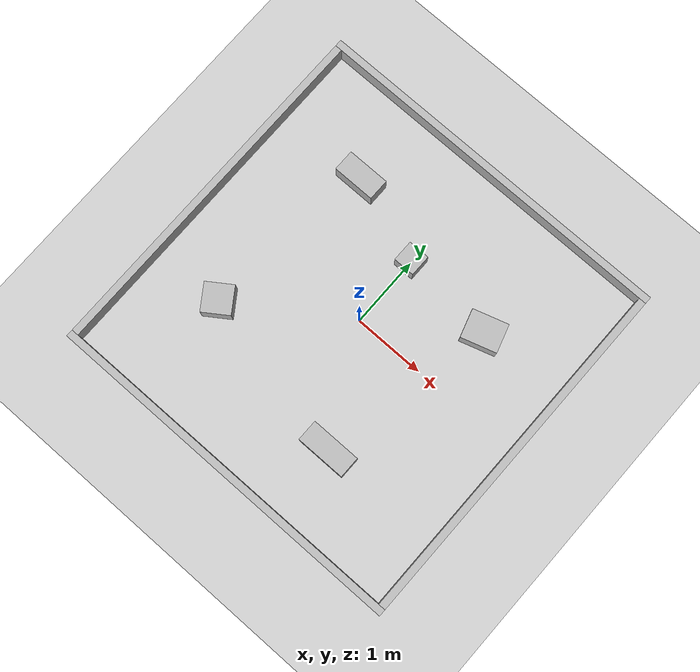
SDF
<?xml version="1.0"?>
<sdf version="1.6">
  <world name="cadence_arena">
    <include><uri>model://ground_plane</uri></include>
    <include><uri>model://sun</uri></include>
    <physics type="ode">
      <real_time_update_rate>100</real_time_update_rate>
      <max_step_size>0.01</max_step_size>  <!-- AgileX's tested setting -->
    </physics>

    <model name="arena">
      <static>true</static>
      <!-- walls: 5 m square, 0.3 m tall, 0.1 m thick -->
      <link name="north"><pose>0 2.55 0.15 0 0 0</pose>
        <collision name="c"><geometry><box><size>5.2 0.1 0.3</size></box></geometry><surface><friction><ode><mu>0.05</mu><mu2>0.05</mu2></ode></friction></surface></collision>
        <visual name="v"><geometry><box><size>5.2 0.1 0.3</size></box></geometry></visual></link>
      <link name="south"><pose>0 -2.55 0.15 0 0 0</pose>
        <collision name="c"><geometry><box><size>5.2 0.1 0.3</size></box></geometry><surface><friction><ode><mu>0.05</mu><mu2>0.05</mu2></ode></friction></surface></collision>
        <visual name="v"><geometry><box><size>5.2 0.1 0.3</size></box></geometry></visual></link>
      <link name="east"><pose>2.55 0 0.15 0 0 0</pose>
        <collision name="c"><geometry><box><size>0.1 5.0 0.3</size></box></geometry><surface><friction><ode><mu>0.05</mu><mu2>0.05</mu2></ode></friction></surface></collision>
        <visual name="v"><geometry><box><size>0.1 5.0 0.3</size></box></geometry></visual></link>
      <link name="west"><pose>-2.55 0 0.15 0 0 0</pose>
        <collision name="c"><geometry><box><size>0.1 5.0 0.3</size></box></geometry><surface><friction><ode><mu>0.05</mu><mu2>0.05</mu2></ode></friction></surface></collision>
        <visual name="v"><geometry><box><size>0.1 5.0 0.3</size></box></geometry></visual></link>
      <!-- obstacles -->
      <link name="box1"><pose>1.3 0.9 0.15 0 0 0.3</pose>
        <collision name="c"><geometry><box><size>0.5 0.4 0.3</size></box></geometry><surface><friction><ode><mu>0.05</mu><mu2>0.05</mu2></ode></friction></surface></collision>
        <visual name="v"><geometry><box><size>0.5 0.4 0.3</size></box></geometry></visual></link>
      <link name="box2"><pose>-1.2 1.4 0.15 0 0 0</pose>
        <collision name="c"><geometry><box><size>0.6 0.3 0.3</size></box></geometry><surface><friction><ode><mu>0.05</mu><mu2>0.05</mu2></ode></friction></surface></collision>
        <visual name="v"><geometry><box><size>0.6 0.3 0.3</size></box></geometry></visual></link>
      <link name="box3"><pose>-1.5 -1.0 0.15 0 0 0.6</pose>
        <collision name="c"><geometry><box><size>0.4 0.4 0.3</size></box></geometry><surface><friction><ode><mu>0.05</mu><mu2>0.05</mu2></ode></friction></surface></collision>
        <visual name="v"><geometry><box><size>0.4 0.4 0.3</size></box></geometry></visual></link>
      <link name="box4"><pose>0.8 -1.5 0.15 0 0 0</pose>
        <collision name="c"><geometry><box><size>0.7 0.3 0.3</size></box></geometry><surface><friction><ode><mu>0.05</mu><mu2>0.05</mu2></ode></friction></surface></collision>
        <visual name="v"><geometry><box><size>0.7 0.3 0.3</size></box></geometry></visual></link>
      <link name="box5"><pose>0 1.0 0.15 0 0 0</pose>
        <collision name="c"><geometry><box><size>0.3 0.3 0.3</size></box></geometry><surface><friction><ode><mu>0.05</mu><mu2>0.05</mu2></ode></friction></surface></collision>
        <visual name="v"><geometry><box><size>0.3 0.3 0.3</size></box></geometry></visual></link>
    </model>
  </world>
</sdf>
